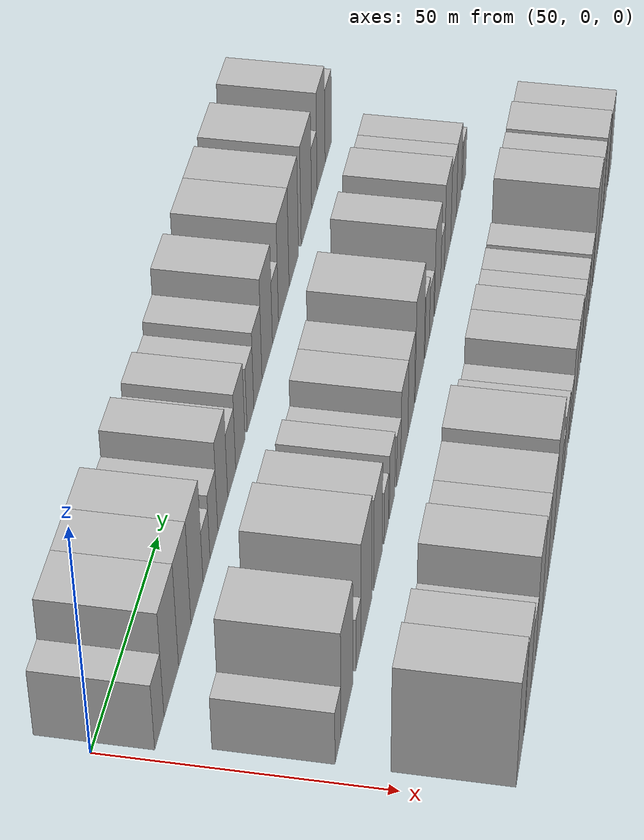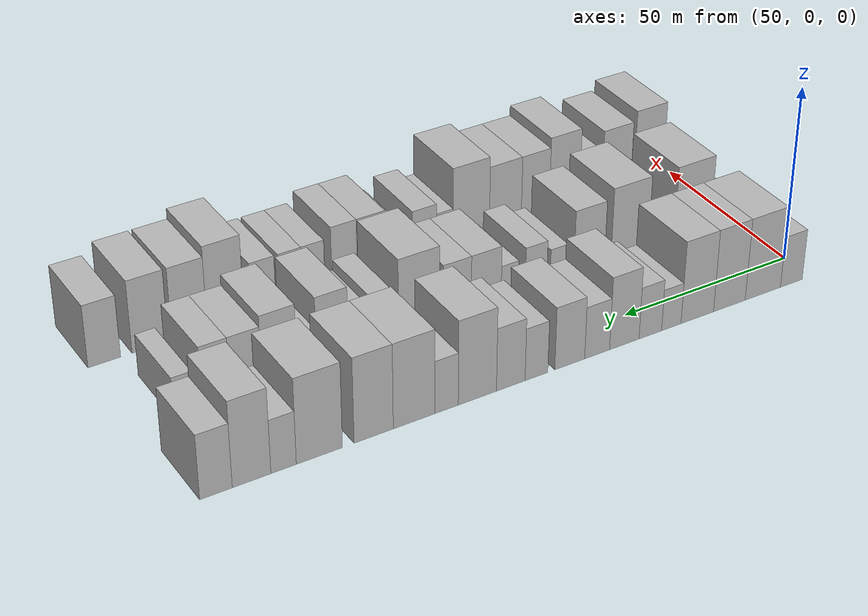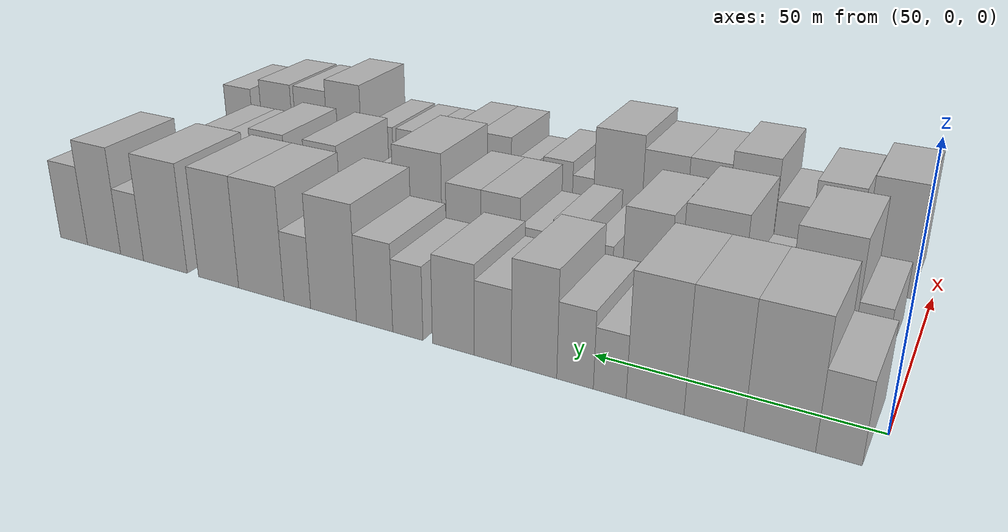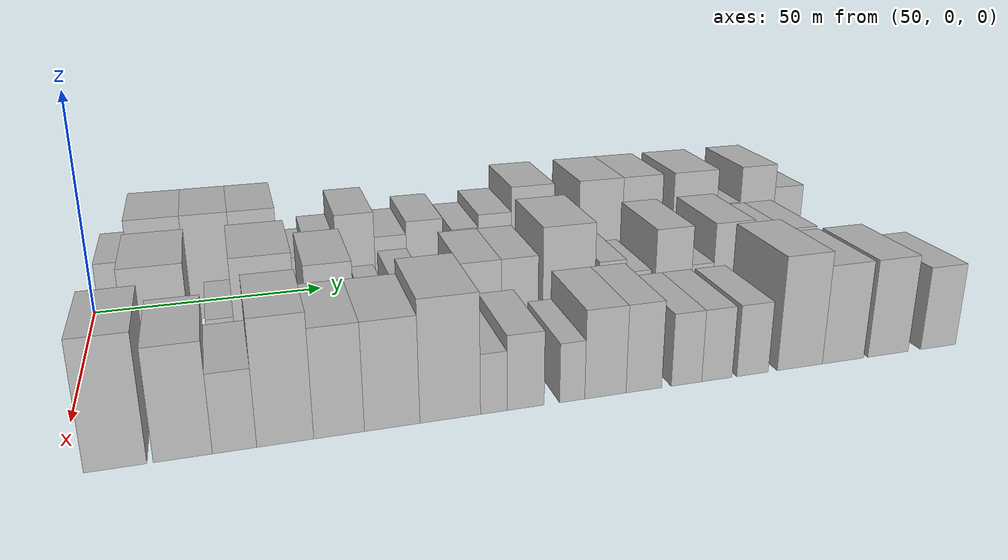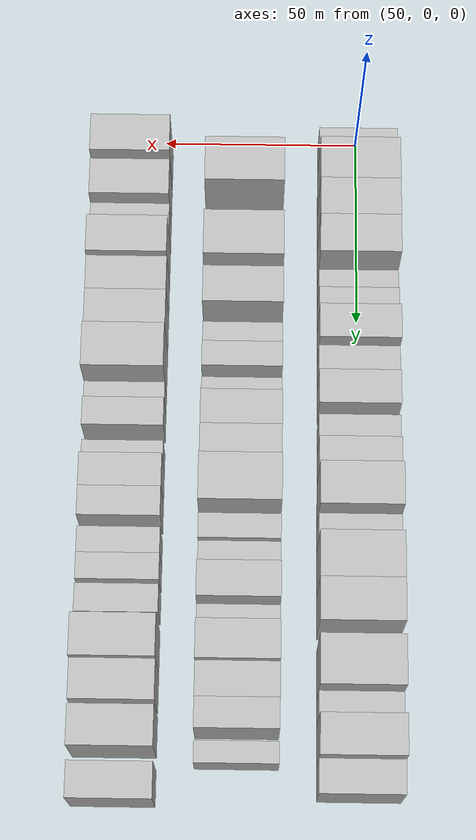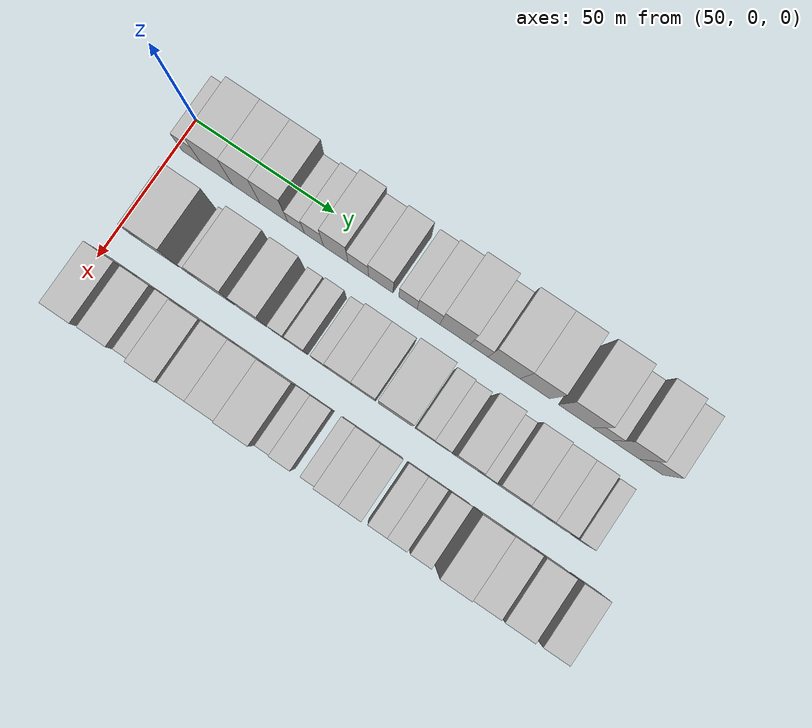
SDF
<sdf version="1.6">
 <world name="default">
  <model name="building_38">
   <static>1</static>
   <pose>50.0000 5.7067 0 0.000000 0.000000 0.000000</pose>
   <link name="link">
    <pose>0 0 7.50 0 0 0</pose>
    <collision name="collision"><geometry><box><size>20.0000 6.9927 15.0000</size></box></geometry></collision>
    <visual name="visual">
     <cast_shadows>0</cast_shadows>
     <geometry><box><size>20.0000 6.9927 15.0000</size></box></geometry>
     <material>
      <script>
       <uri>model://HANNAS_wall/materials/scripts</uri>
       <uri>model://HANNAS_wall/materials/textures</uri>
       <name>vrc/HANNAS_wall</name>
      </script>
     </material>
    </visual>
   </link>
  </model>
  <model name="building_39">
   <static>1</static>
   <pose>50.0000 14.8138 0 0.000000 0.000000 0.000000</pose>
   <link name="link">
    <pose>0 0 12.00 0 0 0</pose>
    <collision name="collision"><geometry><box><size>20.0000 11.2215 24.0000</size></box></geometry></collision>
    <visual name="visual">
     <cast_shadows>0</cast_shadows>
     <geometry><box><size>20.0000 11.2215 24.0000</size></box></geometry>
     <material>
      <script>
       <uri>model://HANNAS_wall/materials/scripts</uri>
       <uri>model://HANNAS_wall/materials/textures</uri>
       <name>vrc/HANNAS_wall</name>
      </script>
     </material>
    </visual>
   </link>
  </model>
  <model name="building_40">
   <static>1</static>
   <pose>50.0000 25.3517 0 0.000000 0.000000 0.000000</pose>
   <link name="link">
    <pose>0 0 12.00 0 0 0</pose>
    <collision name="collision"><geometry><box><size>20.0000 9.8544 24.0000</size></box></geometry></collision>
    <visual name="visual">
     <cast_shadows>0</cast_shadows>
     <geometry><box><size>20.0000 9.8544 24.0000</size></box></geometry>
     <material>
      <script>
       <uri>model://HANNAS_wall/materials/scripts</uri>
       <uri>model://HANNAS_wall/materials/textures</uri>
       <name>vrc/HANNAS_wall</name>
      </script>
     </material>
    </visual>
   </link>
  </model>
  <model name="building_41">
   <static>1</static>
   <pose>50.0000 35.2717 0 0.000000 0.000000 0.000000</pose>
   <link name="link">
    <pose>0 0 12.00 0 0 0</pose>
    <collision name="collision"><geometry><box><size>20.0000 9.9855 24.0000</size></box></geometry></collision>
    <visual name="visual">
     <cast_shadows>0</cast_shadows>
     <geometry><box><size>20.0000 9.9855 24.0000</size></box></geometry>
     <material>
      <script>
       <uri>model://HANNAS_wall/materials/scripts</uri>
       <uri>model://HANNAS_wall/materials/textures</uri>
       <name>vrc/HANNAS_wall</name>
      </script>
     </material>
    </visual>
   </link>
  </model>
  <model name="building_42">
   <static>1</static>
   <pose>50.0000 43.2107 0 0.000000 0.000000 0.000000</pose>
   <link name="link">
    <pose>0 0 6.00 0 0 0</pose>
    <collision name="collision"><geometry><box><size>20.0000 5.8926 12.0000</size></box></geometry></collision>
    <visual name="visual">
     <cast_shadows>0</cast_shadows>
     <geometry><box><size>20.0000 5.8926 12.0000</size></box></geometry>
     <material>
      <script>
       <uri>model://HANNAS_wall/materials/scripts</uri>
       <uri>model://HANNAS_wall/materials/textures</uri>
       <name>vrc/HANNAS_wall</name>
      </script>
     </material>
    </visual>
   </link>
  </model>
  <model name="building_43">
   <static>1</static>
   <pose>50.0000 49.5425 0 0.000000 0.000000 0.000000</pose>
   <link name="link">
    <pose>0 0 7.50 0 0 0</pose>
    <collision name="collision"><geometry><box><size>20.0000 6.7711 15.0000</size></box></geometry></collision>
    <visual name="visual">
     <cast_shadows>0</cast_shadows>
     <geometry><box><size>20.0000 6.7711 15.0000</size></box></geometry>
     <material>
      <script>
       <uri>model://HANNAS_wall/materials/scripts</uri>
       <uri>model://HANNAS_wall/materials/textures</uri>
       <name>vrc/HANNAS_wall</name>
      </script>
     </material>
    </visual>
   </link>
  </model>
  <model name="building_44">
   <static>1</static>
   <pose>50.0000 57.3023 0 0.000000 0.000000 0.000000</pose>
   <link name="link">
    <pose>0 0 10.50 0 0 0</pose>
    <collision name="collision"><geometry><box><size>20.0000 8.7485 21.0000</size></box></geometry></collision>
    <visual name="visual">
     <cast_shadows>0</cast_shadows>
     <geometry><box><size>20.0000 8.7485 21.0000</size></box></geometry>
     <material>
      <script>
       <uri>model://HANNAS_wall/materials/scripts</uri>
       <uri>model://HANNAS_wall/materials/textures</uri>
       <name>vrc/HANNAS_wall</name>
      </script>
     </material>
    </visual>
   </link>
  </model>
  <model name="building_45">
   <static>1</static>
   <pose>50.0000 65.3152 0 0.000000 0.000000 0.000000</pose>
   <link name="link">
    <pose>0 0 7.50 0 0 0</pose>
    <collision name="collision"><geometry><box><size>20.0000 7.2773 15.0000</size></box></geometry></collision>
    <visual name="visual">
     <cast_shadows>0</cast_shadows>
     <geometry><box><size>20.0000 7.2773 15.0000</size></box></geometry>
     <material>
      <script>
       <uri>model://HANNAS_wall/materials/scripts</uri>
       <uri>model://HANNAS_wall/materials/textures</uri>
       <name>vrc/HANNAS_wall</name>
      </script>
     </material>
    </visual>
   </link>
  </model>
  <model name="building_46">
   <static>1</static>
   <pose>50.0000 73.2595 0 0.000000 0.000000 0.000000</pose>
   <link name="link">
    <pose>0 0 9.00 0 0 0</pose>
    <collision name="collision"><geometry><box><size>20.0000 8.6114 18.0000</size></box></geometry></collision>
    <visual name="visual">
     <cast_shadows>0</cast_shadows>
     <geometry><box><size>20.0000 8.6114 18.0000</size></box></geometry>
     <material>
      <script>
       <uri>model://HANNAS_wall/materials/scripts</uri>
       <uri>model://HANNAS_wall/materials/textures</uri>
       <name>vrc/HANNAS_wall</name>
      </script>
     </material>
    </visual>
   </link>
  </model>
  <model name="building_47">
   <static>1</static>
   <pose>50.0000 82.7994 0 0.000000 0.000000 0.000000</pose>
   <link name="link">
    <pose>0 0 7.50 0 0 0</pose>
    <collision name="collision"><geometry><box><size>20.0000 6.4683 15.0000</size></box></geometry></collision>
    <visual name="visual">
     <cast_shadows>0</cast_shadows>
     <geometry><box><size>20.0000 6.4683 15.0000</size></box></geometry>
     <material>
      <script>
       <uri>model://HANNAS_wall/materials/scripts</uri>
       <uri>model://HANNAS_wall/materials/textures</uri>
       <name>vrc/HANNAS_wall</name>
      </script>
     </material>
    </visual>
   </link>
  </model>
  <model name="building_48">
   <static>1</static>
   <pose>50.0000 90.0426 0 0.000000 0.000000 0.000000</pose>
   <link name="link">
    <pose>0 0 9.00 0 0 0</pose>
    <collision name="collision"><geometry><box><size>20.0000 8.0182 18.0000</size></box></geometry></collision>
    <visual name="visual">
     <cast_shadows>0</cast_shadows>
     <geometry><box><size>20.0000 8.0182 18.0000</size></box></geometry>
     <material>
      <script>
       <uri>model://HANNAS_wall/materials/scripts</uri>
       <uri>model://HANNAS_wall/materials/textures</uri>
       <name>vrc/HANNAS_wall</name>
      </script>
     </material>
    </visual>
   </link>
  </model>
  <model name="building_49">
   <static>1</static>
   <pose>50.0000 99.3157 0 0.000000 0.000000 0.000000</pose>
   <link name="link">
    <pose>0 0 12.00 0 0 0</pose>
    <collision name="collision"><geometry><box><size>20.0000 10.5281 24.0000</size></box></geometry></collision>
    <visual name="visual">
     <cast_shadows>0</cast_shadows>
     <geometry><box><size>20.0000 10.5281 24.0000</size></box></geometry>
     <material>
      <script>
       <uri>model://HANNAS_wall/materials/scripts</uri>
       <uri>model://HANNAS_wall/materials/textures</uri>
       <name>vrc/HANNAS_wall</name>
      </script>
     </material>
    </visual>
   </link>
  </model>
  <model name="building_50">
   <static>1</static>
   <pose>50.0000 107.7363 0 0.000000 0.000000 0.000000</pose>
   <link name="link">
    <pose>0 0 7.50 0 0 0</pose>
    <collision name="collision"><geometry><box><size>20.0000 6.3132 15.0000</size></box></geometry></collision>
    <visual name="visual">
     <cast_shadows>0</cast_shadows>
     <geometry><box><size>20.0000 6.3132 15.0000</size></box></geometry>
     <material>
      <script>
       <uri>model://HANNAS_wall/materials/scripts</uri>
       <uri>model://HANNAS_wall/materials/textures</uri>
       <name>vrc/HANNAS_wall</name>
      </script>
     </material>
    </visual>
   </link>
  </model>
  <model name="building_51">
   <static>1</static>
   <pose>50.0000 116.4972 0 0.000000 0.000000 0.000000</pose>
   <link name="link">
    <pose>0 0 12.00 0 0 0</pose>
    <collision name="collision"><geometry><box><size>20.0000 11.2085 24.0000</size></box></geometry></collision>
    <visual name="visual">
     <cast_shadows>0</cast_shadows>
     <geometry><box><size>20.0000 11.2085 24.0000</size></box></geometry>
     <material>
      <script>
       <uri>model://HANNAS_wall/materials/scripts</uri>
       <uri>model://HANNAS_wall/materials/textures</uri>
       <name>vrc/HANNAS_wall</name>
      </script>
     </material>
    </visual>
   </link>
  </model>
  <model name="building_52">
   <static>1</static>
   <pose>50.0000 127.2649 0 0.000000 0.000000 0.000000</pose>
   <link name="link">
    <pose>0 0 12.00 0 0 0</pose>
    <collision name="collision"><geometry><box><size>20.0000 10.3268 24.0000</size></box></geometry></collision>
    <visual name="visual">
     <cast_shadows>0</cast_shadows>
     <geometry><box><size>20.0000 10.3268 24.0000</size></box></geometry>
     <material>
      <script>
       <uri>model://HANNAS_wall/materials/scripts</uri>
       <uri>model://HANNAS_wall/materials/textures</uri>
       <name>vrc/HANNAS_wall</name>
      </script>
     </material>
    </visual>
   </link>
  </model>
  <model name="building_53">
   <static>1</static>
   <pose>50.0000 141.3543 0 0.000000 0.000000 0.000000</pose>
   <link name="link">
    <pose>0 0 12.00 0 0 0</pose>
    <collision name="collision"><geometry><box><size>20.0000 11.8520 24.0000</size></box></geometry></collision>
    <visual name="visual">
     <cast_shadows>0</cast_shadows>
     <geometry><box><size>20.0000 11.8520 24.0000</size></box></geometry>
     <material>
      <script>
       <uri>model://HANNAS_wall/materials/scripts</uri>
       <uri>model://HANNAS_wall/materials/textures</uri>
       <name>vrc/HANNAS_wall</name>
      </script>
     </material>
    </visual>
   </link>
  </model>
  <model name="building_54">
   <static>1</static>
   <pose>50.0000 150.4919 0 0.000000 0.000000 0.000000</pose>
   <link name="link">
    <pose>0 0 7.50 0 0 0</pose>
    <collision name="collision"><geometry><box><size>20.0000 6.4230 15.0000</size></box></geometry></collision>
    <visual name="visual">
     <cast_shadows>0</cast_shadows>
     <geometry><box><size>20.0000 6.4230 15.0000</size></box></geometry>
     <material>
      <script>
       <uri>model://HANNAS_wall/materials/scripts</uri>
       <uri>model://HANNAS_wall/materials/textures</uri>
       <name>vrc/HANNAS_wall</name>
      </script>
     </material>
    </visual>
   </link>
  </model>
  <model name="building_55">
   <static>1</static>
   <pose>50.0000 158.5085 0 0.000000 0.000000 0.000000</pose>
   <link name="link">
    <pose>0 0 12.00 0 0 0</pose>
    <collision name="collision"><geometry><box><size>20.0000 9.6102 24.0000</size></box></geometry></collision>
    <visual name="visual">
     <cast_shadows>0</cast_shadows>
     <geometry><box><size>20.0000 9.6102 24.0000</size></box></geometry>
     <material>
      <script>
       <uri>model://HANNAS_wall/materials/scripts</uri>
       <uri>model://HANNAS_wall/materials/textures</uri>
       <name>vrc/HANNAS_wall</name>
      </script>
     </material>
    </visual>
   </link>
  </model>
  <model name="building_56">
   <static>1</static>
   <pose>50.0000 167.3190 0 0.000000 0.000000 0.000000</pose>
   <link name="link">
    <pose>0 0 9.00 0 0 0</pose>
    <collision name="collision"><geometry><box><size>20.0000 8.0108 18.0000</size></box></geometry></collision>
    <visual name="visual">
     <cast_shadows>0</cast_shadows>
     <geometry><box><size>20.0000 8.0108 18.0000</size></box></geometry>
     <material>
      <script>
       <uri>model://HANNAS_wall/materials/scripts</uri>
       <uri>model://HANNAS_wall/materials/textures</uri>
       <name>vrc/HANNAS_wall</name>
      </script>
     </material>
    </visual>
   </link>
  </model>
  <model name="building_112">
   <static>1</static>
   <pose>79.0000 6.7208 0 0.000000 0.000000 0.000000</pose>
   <link name="link">
    <pose>0 0 6.00 0 0 0</pose>
    <collision name="collision"><geometry><box><size>20.0000 5.7177 12.0000</size></box></geometry></collision>
    <visual name="visual">
     <cast_shadows>0</cast_shadows>
     <geometry><box><size>20.0000 5.7177 12.0000</size></box></geometry>
     <material>
      <script>
       <uri>model://HANNAS_wall/materials/scripts</uri>
       <uri>model://HANNAS_wall/materials/textures</uri>
       <name>vrc/HANNAS_wall</name>
      </script>
     </material>
    </visual>
   </link>
  </model>
  <model name="building_113">
   <static>1</static>
   <pose>79.0000 15.4665 0 0.000000 0.000000 0.000000</pose>
   <link name="link">
    <pose>0 0 12.00 0 0 0</pose>
    <collision name="collision"><geometry><box><size>20.0000 11.7737 24.0000</size></box></geometry></collision>
    <visual name="visual">
     <cast_shadows>0</cast_shadows>
     <geometry><box><size>20.0000 11.7737 24.0000</size></box></geometry>
     <material>
      <script>
       <uri>model://HANNAS_wall/materials/scripts</uri>
       <uri>model://HANNAS_wall/materials/textures</uri>
       <name>vrc/HANNAS_wall</name>
      </script>
     </material>
    </visual>
   </link>
  </model>
  <model name="building_114">
   <static>1</static>
   <pose>79.0000 26.9741 0 0.000000 0.000000 0.000000</pose>
   <link name="link">
    <pose>0 0 6.00 0 0 0</pose>
    <collision name="collision"><geometry><box><size>20.0000 5.2415 12.0000</size></box></geometry></collision>
    <visual name="visual">
     <cast_shadows>0</cast_shadows>
     <geometry><box><size>20.0000 5.2415 12.0000</size></box></geometry>
     <material>
      <script>
       <uri>model://HANNAS_wall/materials/scripts</uri>
       <uri>model://HANNAS_wall/materials/textures</uri>
       <name>vrc/HANNAS_wall</name>
      </script>
     </material>
    </visual>
   </link>
  </model>
  <model name="building_115">
   <static>1</static>
   <pose>79.0000 35.4389 0 0.000000 0.000000 0.000000</pose>
   <link name="link">
    <pose>0 0 12.00 0 0 0</pose>
    <collision name="collision"><geometry><box><size>20.0000 11.6882 24.0000</size></box></geometry></collision>
    <visual name="visual">
     <cast_shadows>0</cast_shadows>
     <geometry><box><size>20.0000 11.6882 24.0000</size></box></geometry>
     <material>
      <script>
       <uri>model://HANNAS_wall/materials/scripts</uri>
       <uri>model://HANNAS_wall/materials/textures</uri>
       <name>vrc/HANNAS_wall</name>
      </script>
     </material>
    </visual>
   </link>
  </model>
  <model name="building_116">
   <static>1</static>
   <pose>79.0000 47.9972 0 0.000000 0.000000 0.000000</pose>
   <link name="link">
    <pose>0 0 10.50 0 0 0</pose>
    <collision name="collision"><geometry><box><size>20.0000 9.4284 21.0000</size></box></geometry></collision>
    <visual name="visual">
     <cast_shadows>0</cast_shadows>
     <geometry><box><size>20.0000 9.4284 21.0000</size></box></geometry>
     <material>
      <script>
       <uri>model://HANNAS_wall/materials/scripts</uri>
       <uri>model://HANNAS_wall/materials/textures</uri>
       <name>vrc/HANNAS_wall</name>
      </script>
     </material>
    </visual>
   </link>
  </model>
  <model name="building_117">
   <static>1</static>
   <pose>79.0000 57.2919 0 0.000000 0.000000 0.000000</pose>
   <link name="link">
    <pose>0 0 6.00 0 0 0</pose>
    <collision name="collision"><geometry><box><size>20.0000 5.1611 12.0000</size></box></geometry></collision>
    <visual name="visual">
     <cast_shadows>0</cast_shadows>
     <geometry><box><size>20.0000 5.1611 12.0000</size></box></geometry>
     <material>
      <script>
       <uri>model://HANNAS_wall/materials/scripts</uri>
       <uri>model://HANNAS_wall/materials/textures</uri>
       <name>vrc/HANNAS_wall</name>
      </script>
     </material>
    </visual>
   </link>
  </model>
  <model name="building_118">
   <static>1</static>
   <pose>79.0000 64.1013 0 0.000000 0.000000 0.000000</pose>
   <link name="link">
    <pose>0 0 7.50 0 0 0</pose>
    <collision name="collision"><geometry><box><size>20.0000 6.4576 15.0000</size></box></geometry></collision>
    <visual name="visual">
     <cast_shadows>0</cast_shadows>
     <geometry><box><size>20.0000 6.4576 15.0000</size></box></geometry>
     <material>
      <script>
       <uri>model://HANNAS_wall/materials/scripts</uri>
       <uri>model://HANNAS_wall/materials/textures</uri>
       <name>vrc/HANNAS_wall</name>
      </script>
     </material>
    </visual>
   </link>
  </model>
  <model name="building_119">
   <static>1</static>
   <pose>79.0000 71.8822 0 0.000000 0.000000 0.000000</pose>
   <link name="link">
    <pose>0 0 6.00 0 0 0</pose>
    <collision name="collision"><geometry><box><size>20.0000 5.1043 12.0000</size></box></geometry></collision>
    <visual name="visual">
     <cast_shadows>0</cast_shadows>
     <geometry><box><size>20.0000 5.1043 12.0000</size></box></geometry>
     <material>
      <script>
       <uri>model://HANNAS_wall/materials/scripts</uri>
       <uri>model://HANNAS_wall/materials/textures</uri>
       <name>vrc/HANNAS_wall</name>
      </script>
     </material>
    </visual>
   </link>
  </model>
  <model name="building_120">
   <static>1</static>
   <pose>79.0000 78.8102 0 0.000000 0.000000 0.000000</pose>
   <link name="link">
    <pose>0 0 9.00 0 0 0</pose>
    <collision name="collision"><geometry><box><size>20.0000 8.7517 18.0000</size></box></geometry></collision>
    <visual name="visual">
     <cast_shadows>0</cast_shadows>
     <geometry><box><size>20.0000 8.7517 18.0000</size></box></geometry>
     <material>
      <script>
       <uri>model://HANNAS_wall/materials/scripts</uri>
       <uri>model://HANNAS_wall/materials/textures</uri>
       <name>vrc/HANNAS_wall</name>
      </script>
     </material>
    </visual>
   </link>
  </model>
  <model name="building_121">
   <static>1</static>
   <pose>79.0000 87.2160 0 0.000000 0.000000 0.000000</pose>
   <link name="link">
    <pose>0 0 9.00 0 0 0</pose>
    <collision name="collision"><geometry><box><size>20.0000 8.0597 18.0000</size></box></geometry></collision>
    <visual name="visual">
     <cast_shadows>0</cast_shadows>
     <geometry><box><size>20.0000 8.0597 18.0000</size></box></geometry>
     <material>
      <script>
       <uri>model://HANNAS_wall/materials/scripts</uri>
       <uri>model://HANNAS_wall/materials/textures</uri>
       <name>vrc/HANNAS_wall</name>
      </script>
     </material>
    </visual>
   </link>
  </model>
  <model name="building_122">
   <static>1</static>
   <pose>79.0000 98.0609 0 0.000000 0.000000 0.000000</pose>
   <link name="link">
    <pose>0 0 12.00 0 0 0</pose>
    <collision name="collision"><geometry><box><size>20.0000 11.6303 24.0000</size></box></geometry></collision>
    <visual name="visual">
     <cast_shadows>0</cast_shadows>
     <geometry><box><size>20.0000 11.6303 24.0000</size></box></geometry>
     <material>
      <script>
       <uri>model://HANNAS_wall/materials/scripts</uri>
       <uri>model://HANNAS_wall/materials/textures</uri>
       <name>vrc/HANNAS_wall</name>
      </script>
     </material>
    </visual>
   </link>
  </model>
  <model name="building_123">
   <static>1</static>
   <pose>79.0000 107.9271 0 0.000000 0.000000 0.000000</pose>
   <link name="link">
    <pose>0 0 7.50 0 0 0</pose>
    <collision name="collision"><geometry><box><size>20.0000 6.1020 15.0000</size></box></geometry></collision>
    <visual name="visual">
     <cast_shadows>0</cast_shadows>
     <geometry><box><size>20.0000 6.1020 15.0000</size></box></geometry>
     <material>
      <script>
       <uri>model://HANNAS_wall/materials/scripts</uri>
       <uri>model://HANNAS_wall/materials/textures</uri>
       <name>vrc/HANNAS_wall</name>
      </script>
     </material>
    </visual>
   </link>
  </model>
  <model name="building_124">
   <static>1</static>
   <pose>79.0000 113.8951 0 0.000000 0.000000 0.000000</pose>
   <link name="link">
    <pose>0 0 6.00 0 0 0</pose>
    <collision name="collision"><geometry><box><size>20.0000 5.8340 12.0000</size></box></geometry></collision>
    <visual name="visual">
     <cast_shadows>0</cast_shadows>
     <geometry><box><size>20.0000 5.8340 12.0000</size></box></geometry>
     <material>
      <script>
       <uri>model://HANNAS_wall/materials/scripts</uri>
       <uri>model://HANNAS_wall/materials/textures</uri>
       <name>vrc/HANNAS_wall</name>
      </script>
     </material>
    </visual>
   </link>
  </model>
  <model name="building_125">
   <static>1</static>
   <pose>79.0000 122.1447 0 0.000000 0.000000 0.000000</pose>
   <link name="link">
    <pose>0 0 10.50 0 0 0</pose>
    <collision name="collision"><geometry><box><size>20.0000 8.6652 21.0000</size></box></geometry></collision>
    <visual name="visual">
     <cast_shadows>0</cast_shadows>
     <geometry><box><size>20.0000 8.6652 21.0000</size></box></geometry>
     <material>
      <script>
       <uri>model://HANNAS_wall/materials/scripts</uri>
       <uri>model://HANNAS_wall/materials/textures</uri>
       <name>vrc/HANNAS_wall</name>
      </script>
     </material>
    </visual>
   </link>
  </model>
  <model name="building_126">
   <static>1</static>
   <pose>79.0000 129.1047 0 0.000000 0.000000 0.000000</pose>
   <link name="link">
    <pose>0 0 6.00 0 0 0</pose>
    <collision name="collision"><geometry><box><size>20.0000 5.2549 12.0000</size></box></geometry></collision>
    <visual name="visual">
     <cast_shadows>0</cast_shadows>
     <geometry><box><size>20.0000 5.2549 12.0000</size></box></geometry>
     <material>
      <script>
       <uri>model://HANNAS_wall/materials/scripts</uri>
       <uri>model://HANNAS_wall/materials/textures</uri>
       <name>vrc/HANNAS_wall</name>
      </script>
     </material>
    </visual>
   </link>
  </model>
  <model name="building_127">
   <static>1</static>
   <pose>79.0000 136.4122 0 0.000000 0.000000 0.000000</pose>
   <link name="link">
    <pose>0 0 10.50 0 0 0</pose>
    <collision name="collision"><geometry><box><size>20.0000 9.3601 21.0000</size></box></geometry></collision>
    <visual name="visual">
     <cast_shadows>0</cast_shadows>
     <geometry><box><size>20.0000 9.3601 21.0000</size></box></geometry>
     <material>
      <script>
       <uri>model://HANNAS_wall/materials/scripts</uri>
       <uri>model://HANNAS_wall/materials/textures</uri>
       <name>vrc/HANNAS_wall</name>
      </script>
     </material>
    </visual>
   </link>
  </model>
  <model name="building_128">
   <static>1</static>
   <pose>79.0000 145.2906 0 0.000000 0.000000 0.000000</pose>
   <link name="link">
    <pose>0 0 9.00 0 0 0</pose>
    <collision name="collision"><geometry><box><size>20.0000 8.3967 18.0000</size></box></geometry></collision>
    <visual name="visual">
     <cast_shadows>0</cast_shadows>
     <geometry><box><size>20.0000 8.3967 18.0000</size></box></geometry>
     <material>
      <script>
       <uri>model://HANNAS_wall/materials/scripts</uri>
       <uri>model://HANNAS_wall/materials/textures</uri>
       <name>vrc/HANNAS_wall</name>
      </script>
     </material>
    </visual>
   </link>
  </model>
  <model name="building_129">
   <static>1</static>
   <pose>79.0000 153.1274 0 0.000000 0.000000 0.000000</pose>
   <link name="link">
    <pose>0 0 9.00 0 0 0</pose>
    <collision name="collision"><geometry><box><size>20.0000 7.2769 18.0000</size></box></geometry></collision>
    <visual name="visual">
     <cast_shadows>0</cast_shadows>
     <geometry><box><size>20.0000 7.2769 18.0000</size></box></geometry>
     <material>
      <script>
       <uri>model://HANNAS_wall/materials/scripts</uri>
       <uri>model://HANNAS_wall/materials/textures</uri>
       <name>vrc/HANNAS_wall</name>
      </script>
     </material>
    </visual>
   </link>
  </model>
  <model name="building_130">
   <static>1</static>
   <pose>79.0000 161.3744 0 0.000000 0.000000 0.000000</pose>
   <link name="link">
    <pose>0 0 6.00 0 0 0</pose>
    <collision name="collision"><geometry><box><size>20.0000 5.2171 12.0000</size></box></geometry></collision>
    <visual name="visual">
     <cast_shadows>0</cast_shadows>
     <geometry><box><size>20.0000 5.2171 12.0000</size></box></geometry>
     <material>
      <script>
       <uri>model://HANNAS_wall/materials/scripts</uri>
       <uri>model://HANNAS_wall/materials/textures</uri>
       <name>vrc/HANNAS_wall</name>
      </script>
     </material>
    </visual>
   </link>
  </model>
  <model name="building_189">
   <static>1</static>
   <pose>108.0000 8.6917 0 0.000000 0.000000 0.000000</pose>
   <link name="link">
    <pose>0 0 12.00 0 0 0</pose>
    <collision name="collision"><geometry><box><size>20.0000 9.8416 24.0000</size></box></geometry></collision>
    <visual name="visual">
     <cast_shadows>0</cast_shadows>
     <geometry><box><size>20.0000 9.8416 24.0000</size></box></geometry>
     <material>
      <script>
       <uri>model://HANNAS_wall/materials/scripts</uri>
       <uri>model://HANNAS_wall/materials/textures</uri>
       <name>vrc/HANNAS_wall</name>
      </script>
     </material>
    </visual>
   </link>
  </model>
  <model name="building_190">
   <static>1</static>
   <pose>108.0000 19.3565 0 0.000000 0.000000 0.000000</pose>
   <link name="link">
    <pose>0 0 10.50 0 0 0</pose>
    <collision name="collision"><geometry><box><size>20.0000 9.4882 21.0000</size></box></geometry></collision>
    <visual name="visual">
     <cast_shadows>0</cast_shadows>
     <geometry><box><size>20.0000 9.4882 21.0000</size></box></geometry>
     <material>
      <script>
       <uri>model://HANNAS_wall/materials/scripts</uri>
       <uri>model://HANNAS_wall/materials/textures</uri>
       <name>vrc/HANNAS_wall</name>
      </script>
     </material>
    </visual>
   </link>
  </model>
  <model name="building_191">
   <static>1</static>
   <pose>108.0000 27.7420 0 0.000000 0.000000 0.000000</pose>
   <link name="link">
    <pose>0 0 7.50 0 0 0</pose>
    <collision name="collision"><geometry><box><size>20.0000 7.2827 15.0000</size></box></geometry></collision>
    <visual name="visual">
     <cast_shadows>0</cast_shadows>
     <geometry><box><size>20.0000 7.2827 15.0000</size></box></geometry>
     <material>
      <script>
       <uri>model://HANNAS_wall/materials/scripts</uri>
       <uri>model://HANNAS_wall/materials/textures</uri>
       <name>vrc/HANNAS_wall</name>
      </script>
     </material>
    </visual>
   </link>
  </model>
  <model name="building_192">
   <static>1</static>
   <pose>108.0000 36.1975 0 0.000000 0.000000 0.000000</pose>
   <link name="link">
    <pose>0 0 12.00 0 0 0</pose>
    <collision name="collision"><geometry><box><size>20.0000 9.6283 24.0000</size></box></geometry></collision>
    <visual name="visual">
     <cast_shadows>0</cast_shadows>
     <geometry><box><size>20.0000 9.6283 24.0000</size></box></geometry>
     <material>
      <script>
       <uri>model://HANNAS_wall/materials/scripts</uri>
       <uri>model://HANNAS_wall/materials/textures</uri>
       <name>vrc/HANNAS_wall</name>
      </script>
     </material>
    </visual>
   </link>
  </model>
  <model name="building_193">
   <static>1</static>
   <pose>108.0000 45.4140 0 0.000000 0.000000 0.000000</pose>
   <link name="link">
    <pose>0 0 10.50 0 0 0</pose>
    <collision name="collision"><geometry><box><size>20.0000 8.8048 21.0000</size></box></geometry></collision>
    <visual name="visual">
     <cast_shadows>0</cast_shadows>
     <geometry><box><size>20.0000 8.8048 21.0000</size></box></geometry>
     <material>
      <script>
       <uri>model://HANNAS_wall/materials/scripts</uri>
       <uri>model://HANNAS_wall/materials/textures</uri>
       <name>vrc/HANNAS_wall</name>
      </script>
     </material>
    </visual>
   </link>
  </model>
  <model name="building_194">
   <static>1</static>
   <pose>108.0000 54.7614 0 0.000000 0.000000 0.000000</pose>
   <link name="link">
    <pose>0 0 10.50 0 0 0</pose>
    <collision name="collision"><geometry><box><size>20.0000 9.8900 21.0000</size></box></geometry></collision>
    <visual name="visual">
     <cast_shadows>0</cast_shadows>
     <geometry><box><size>20.0000 9.8900 21.0000</size></box></geometry>
     <material>
      <script>
       <uri>model://HANNAS_wall/materials/scripts</uri>
       <uri>model://HANNAS_wall/materials/textures</uri>
       <name>vrc/HANNAS_wall</name>
      </script>
     </material>
    </visual>
   </link>
  </model>
  <model name="building_195">
   <static>1</static>
   <pose>108.0000 65.2916 0 0.000000 0.000000 0.000000</pose>
   <link name="link">
    <pose>0 0 12.00 0 0 0</pose>
    <collision name="collision"><geometry><box><size>20.0000 11.1705 24.0000</size></box></geometry></collision>
    <visual name="visual">
     <cast_shadows>0</cast_shadows>
     <geometry><box><size>20.0000 11.1705 24.0000</size></box></geometry>
     <material>
      <script>
       <uri>model://HANNAS_wall/materials/scripts</uri>
       <uri>model://HANNAS_wall/materials/textures</uri>
       <name>vrc/HANNAS_wall</name>
      </script>
     </material>
    </visual>
   </link>
  </model>
  <model name="building_196">
   <static>1</static>
   <pose>108.0000 73.3676 0 0.000000 0.000000 0.000000</pose>
   <link name="link">
    <pose>0 0 6.00 0 0 0</pose>
    <collision name="collision"><geometry><box><size>20.0000 4.9814 12.0000</size></box></geometry></collision>
    <visual name="visual">
     <cast_shadows>0</cast_shadows>
     <geometry><box><size>20.0000 4.9814 12.0000</size></box></geometry>
     <material>
      <script>
       <uri>model://HANNAS_wall/materials/scripts</uri>
       <uri>model://HANNAS_wall/materials/textures</uri>
       <name>vrc/HANNAS_wall</name>
      </script>
     </material>
    </visual>
   </link>
  </model>
  <model name="building_197">
   <static>1</static>
   <pose>108.0000 79.4355 0 0.000000 0.000000 0.000000</pose>
   <link name="link">
    <pose>0 0 7.50 0 0 0</pose>
    <collision name="collision"><geometry><box><size>20.0000 7.1545 15.0000</size></box></geometry></collision>
    <visual name="visual">
     <cast_shadows>0</cast_shadows>
     <geometry><box><size>20.0000 7.1545 15.0000</size></box></geometry>
     <material>
      <script>
       <uri>model://HANNAS_wall/materials/scripts</uri>
       <uri>model://HANNAS_wall/materials/textures</uri>
       <name>vrc/HANNAS_wall</name>
      </script>
     </material>
    </visual>
   </link>
  </model>
  <model name="building_198">
   <static>1</static>
   <pose>108.0000 88.4864 0 0.000000 0.000000 0.000000</pose>
   <link name="link">
    <pose>0 0 6.00 0 0 0</pose>
    <collision name="collision"><geometry><box><size>20.0000 4.9472 12.0000</size></box></geometry></collision>
    <visual name="visual">
     <cast_shadows>0</cast_shadows>
     <geometry><box><size>20.0000 4.9472 12.0000</size></box></geometry>
     <material>
      <script>
       <uri>model://HANNAS_wall/materials/scripts</uri>
       <uri>model://HANNAS_wall/materials/textures</uri>
       <name>vrc/HANNAS_wall</name>
      </script>
     </material>
    </visual>
   </link>
  </model>
  <model name="building_199">
   <static>1</static>
   <pose>108.0000 95.1037 0 0.000000 0.000000 0.000000</pose>
   <link name="link">
    <pose>0 0 9.00 0 0 0</pose>
    <collision name="collision"><geometry><box><size>20.0000 8.2873 18.0000</size></box></geometry></collision>
    <visual name="visual">
     <cast_shadows>0</cast_shadows>
     <geometry><box><size>20.0000 8.2873 18.0000</size></box></geometry>
     <material>
      <script>
       <uri>model://HANNAS_wall/materials/scripts</uri>
       <uri>model://HANNAS_wall/materials/textures</uri>
       <name>vrc/HANNAS_wall</name>
      </script>
     </material>
    </visual>
   </link>
  </model>
  <model name="building_200">
   <static>1</static>
   <pose>108.0000 102.9043 0 0.000000 0.000000 0.000000</pose>
   <link name="link">
    <pose>0 0 9.00 0 0 0</pose>
    <collision name="collision"><geometry><box><size>20.0000 7.3138 18.0000</size></box></geometry></collision>
    <visual name="visual">
     <cast_shadows>0</cast_shadows>
     <geometry><box><size>20.0000 7.3138 18.0000</size></box></geometry>
     <material>
      <script>
       <uri>model://HANNAS_wall/materials/scripts</uri>
       <uri>model://HANNAS_wall/materials/textures</uri>
       <name>vrc/HANNAS_wall</name>
      </script>
     </material>
    </visual>
   </link>
  </model>
  <model name="building_201">
   <static>1</static>
   <pose>108.0000 111.7566 0 0.000000 0.000000 0.000000</pose>
   <link name="link">
    <pose>0 0 7.50 0 0 0</pose>
    <collision name="collision"><geometry><box><size>20.0000 6.3909 15.0000</size></box></geometry></collision>
    <visual name="visual">
     <cast_shadows>0</cast_shadows>
     <geometry><box><size>20.0000 6.3909 15.0000</size></box></geometry>
     <material>
      <script>
       <uri>model://HANNAS_wall/materials/scripts</uri>
       <uri>model://HANNAS_wall/materials/textures</uri>
       <name>vrc/HANNAS_wall</name>
      </script>
     </material>
    </visual>
   </link>
  </model>
  <model name="building_202">
   <static>1</static>
   <pose>108.0000 118.2040 0 0.000000 0.000000 0.000000</pose>
   <link name="link">
    <pose>0 0 7.50 0 0 0</pose>
    <collision name="collision"><geometry><box><size>20.0000 6.5039 15.0000</size></box></geometry></collision>
    <visual name="visual">
     <cast_shadows>0</cast_shadows>
     <geometry><box><size>20.0000 6.5039 15.0000</size></box></geometry>
     <material>
      <script>
       <uri>model://HANNAS_wall/materials/scripts</uri>
       <uri>model://HANNAS_wall/materials/textures</uri>
       <name>vrc/HANNAS_wall</name>
      </script>
     </material>
    </visual>
   </link>
  </model>
  <model name="building_203">
   <static>1</static>
   <pose>108.0000 125.9068 0 0.000000 0.000000 0.000000</pose>
   <link name="link">
    <pose>0 0 7.50 0 0 0</pose>
    <collision name="collision"><geometry><box><size>20.0000 6.9017 15.0000</size></box></geometry></collision>
    <visual name="visual">
     <cast_shadows>0</cast_shadows>
     <geometry><box><size>20.0000 6.9017 15.0000</size></box></geometry>
     <material>
      <script>
       <uri>model://HANNAS_wall/materials/scripts</uri>
       <uri>model://HANNAS_wall/materials/textures</uri>
       <name>vrc/HANNAS_wall</name>
      </script>
     </material>
    </visual>
   </link>
  </model>
  <model name="building_204">
   <static>1</static>
   <pose>108.0000 136.4113 0 0.000000 0.000000 0.000000</pose>
   <link name="link">
    <pose>0 0 12.00 0 0 0</pose>
    <collision name="collision"><geometry><box><size>20.0000 10.1072 24.0000</size></box></geometry></collision>
    <visual name="visual">
     <cast_shadows>0</cast_shadows>
     <geometry><box><size>20.0000 10.1072 24.0000</size></box></geometry>
     <material>
      <script>
       <uri>model://HANNAS_wall/materials/scripts</uri>
       <uri>model://HANNAS_wall/materials/textures</uri>
       <name>vrc/HANNAS_wall</name>
      </script>
     </material>
    </visual>
   </link>
  </model>
  <model name="building_205">
   <static>1</static>
   <pose>108.0000 146.2296 0 0.000000 0.000000 0.000000</pose>
   <link name="link">
    <pose>0 0 10.50 0 0 0</pose>
    <collision name="collision"><geometry><box><size>20.0000 9.5294 21.0000</size></box></geometry></collision>
    <visual name="visual">
     <cast_shadows>0</cast_shadows>
     <geometry><box><size>20.0000 9.5294 21.0000</size></box></geometry>
     <material>
      <script>
       <uri>model://HANNAS_wall/materials/scripts</uri>
       <uri>model://HANNAS_wall/materials/textures</uri>
       <name>vrc/HANNAS_wall</name>
      </script>
     </material>
    </visual>
   </link>
  </model>
  <model name="building_206">
   <static>1</static>
   <pose>108.0000 156.7820 0 0.000000 0.000000 0.000000</pose>
   <link name="link">
    <pose>0 0 10.50 0 0 0</pose>
    <collision name="collision"><geometry><box><size>20.0000 9.5753 21.0000</size></box></geometry></collision>
    <visual name="visual">
     <cast_shadows>0</cast_shadows>
     <geometry><box><size>20.0000 9.5753 21.0000</size></box></geometry>
     <material>
      <script>
       <uri>model://HANNAS_wall/materials/scripts</uri>
       <uri>model://HANNAS_wall/materials/textures</uri>
       <name>vrc/HANNAS_wall</name>
      </script>
     </material>
    </visual>
   </link>
  </model>
  <model name="building_207">
   <static>1</static>
   <pose>108.0000 168.8288 0 0.000000 0.000000 0.000000</pose>
   <link name="link">
    <pose>0 0 9.00 0 0 0</pose>
    <collision name="collision"><geometry><box><size>20.0000 8.5184 18.0000</size></box></geometry></collision>
    <visual name="visual">
     <cast_shadows>0</cast_shadows>
     <geometry><box><size>20.0000 8.5184 18.0000</size></box></geometry>
     <material>
      <script>
       <uri>model://HANNAS_wall/materials/scripts</uri>
       <uri>model://HANNAS_wall/materials/textures</uri>
       <name>vrc/HANNAS_wall</name>
      </script>
     </material>
    </visual>
   </link>
  </model>
 </world>
</sdf>
